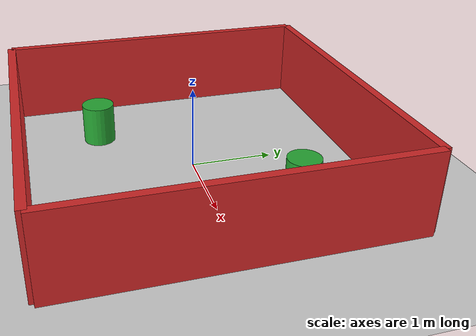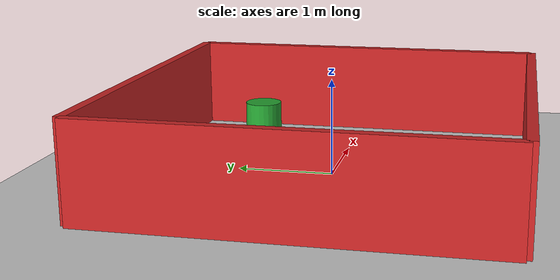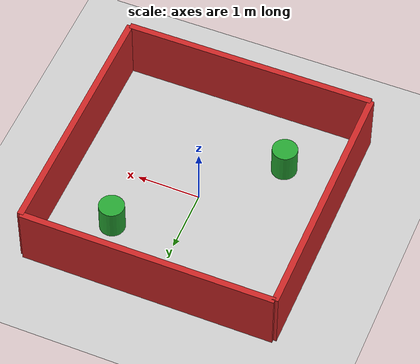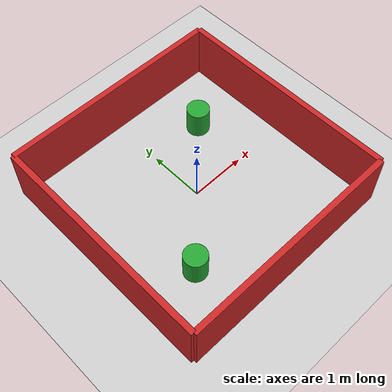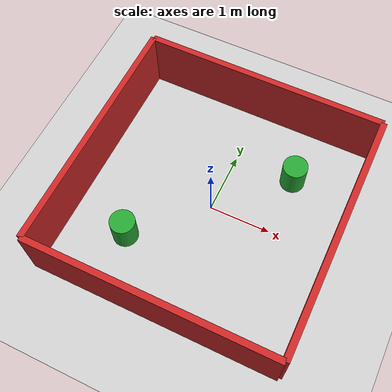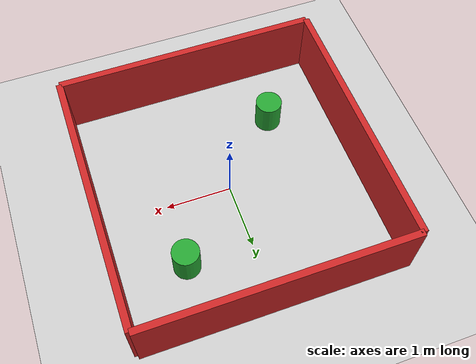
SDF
<?xml version="1.0" ?>
<sdf version="1.6">
  <world name="default">
    <include>
      <uri>model://sun</uri>
    </include>

    <include>
      <uri>model://ground_plane</uri>
    </include>

    <model name="wall1">
      <pose>2 0 0.5 0 0 0</pose>
      <static>true</static>
      <link name="link">
        <collision name="collision">
          <geometry><box><size>0.1 4 1</size></box></geometry>
        </collision>
        <visual name="visual">
          <geometry><box><size>0.1 4 1</size></box></geometry>
          <material><script><uri>file://media/materials/scripts/gazebo.material</uri><name>Gazebo/Red</name></script></material>
        </visual>
      </link>
    </model>

    <model name="wall2">
      <pose>-2 0 0.5 0 0 0</pose>
      <static>true</static>
      <link name="link">
        <collision name="collision">
          <geometry><box><size>0.1 4 1</size></box></geometry>
        </collision>
        <visual name="visual">
          <geometry><box><size>0.1 4 1</size></box></geometry>
          <material><script><uri>file://media/materials/scripts/gazebo.material</uri><name>Gazebo/Red</name></script></material>
        </visual>
      </link>
    </model>

    <model name="wall3">
      <pose>0 2 0.5 0 0 1.5708</pose>
      <static>true</static>
      <link name="link">
        <collision name="collision">
          <geometry><box><size>0.1 4 1</size></box></geometry>
        </collision>
        <visual name="visual">
          <geometry><box><size>0.1 4 1</size></box></geometry>
          <material><script><uri>file://media/materials/scripts/gazebo.material</uri><name>Gazebo/Red</name></script></material>
        </visual>
      </link>
    </model>

    <model name="wall4">
      <pose>0 -2 0.5 0 0 1.5708</pose>
      <static>true</static>
      <link name="link">
        <collision name="collision">
          <geometry><box><size>0.1 4 1</size></box></geometry>
        </collision>
        <visual name="visual">
          <geometry><box><size>0.1 4 1</size></box></geometry>
          <material><script><uri>file://media/materials/scripts/gazebo.material</uri><name>Gazebo/Red</name></script></material>
        </visual>
      </link>
    </model>

    <model name="obstacle1">
      <pose>1 1 0.25 0 0 0</pose>
      <static>true</static>
      <link name="link">
        <collision name="collision">
          <geometry><cylinder><radius>0.2</radius><length>0.5</length></cylinder></geometry>
        </collision>
        <visual name="visual">
          <geometry><cylinder><radius>0.2</radius><length>0.5</length></cylinder></geometry>
          <material><script><uri>file://media/materials/scripts/gazebo.material</uri><name>Gazebo/Green</name></script></material>
        </visual>
      </link>
    </model>

    <model name="obstacle2">
      <pose>-1 -1 0.25 0 0 0</pose>
      <static>true</static>
      <link name="link">
        <collision name="collision">
          <geometry><cylinder><radius>0.2</radius><length>0.5</length></cylinder></geometry>
        </collision>
        <visual name="visual">
          <geometry><cylinder><radius>0.2</radius><length>0.5</length></cylinder></geometry>
          <material><script><uri>file://media/materials/scripts/gazebo.material</uri><name>Gazebo/Green</name></script></material>
        </visual>
      </link>
    </model>
  </world>
</sdf>
